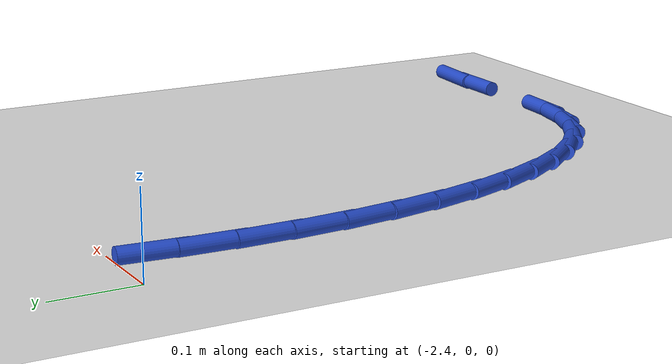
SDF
<sdf version="1.6">
 <world name="default">
  <model name="ground_plane">
   <static>1</static>
   <link name="link">
    <collision name="collision">
     <geometry><plane><normal>0 0 1</normal><size>100 100</size></plane></geometry>
     <surface><friction><ode><mu>100</mu><mu2>50</mu2></ode></friction></surface>
    </collision>
    <visual name="visual">
     <cast_shadows>0</cast_shadows>
     <geometry><plane><normal>0 0 1</normal><size>100 100</size></plane></geometry>
     <material>
      <script><uri>file://media/materials/scripts/gazebo.material</uri><name>Gazebo/WhiteGlow</name></script>
     </material>
    </visual>
   </link>
  </model>
  <model name="line">
   <link name="link_71">
    <pose>-2.3348391494016765 -0.03724082572631464 0.01 0 1.57 1.4874031911205035</pose>
    <collision name="collision">
     <geometry><cylinder><radius>0.01</radius><length>0.08</length></cylinder></geometry>
    </collision>
    <visual name="visual">
     <material>
      <script><name>Gazebo/Blue</name><uri>file://media/materials/scripts/gazebo.material</uri></script>
     </material>
     <geometry><cylinder><radius>0.01</radius><length>0.08</length></cylinder></geometry>
    </visual>
   </link>
   <link name="link_72">
    <pose>-2.340243284650177 -0.10189365188185462 0.01 0 1.57 1.535743510435168</pose>
    <collision name="collision">
     <geometry><cylinder><radius>0.01</radius><length>0.08</length></cylinder></geometry>
    </collision>
    <visual name="visual">
     <material>
      <script><name>Gazebo/Blue</name><uri>file://media/materials/scripts/gazebo.material</uri></script>
     </material>
     <geometry><cylinder><radius>0.01</radius><length>0.08</length></cylinder></geometry>
    </visual>
   </link>
   <link name="link_73">
    <pose>-2.34252378236371 -0.1669259048633213 0.01 0 1.57 -1.5556360762232304</pose>
    <collision name="collision">
     <geometry><cylinder><radius>0.01</radius><length>0.08</length></cylinder></geometry>
    </collision>
    <visual name="visual">
     <material>
      <script><name>Gazebo/Blue</name><uri>file://media/materials/scripts/gazebo.material</uri></script>
     </material>
     <geometry><cylinder><radius>0.01</radius><length>0.08</length></cylinder></geometry>
    </visual>
   </link>
   <link name="link_74">
    <pose>-2.3415421857047636 -0.23166899416703696 0.01 0 1.57 -1.5022026148852892</pose>
    <collision name="collision">
     <geometry><cylinder><radius>0.01</radius><length>0.08</length></cylinder></geometry>
    </collision>
    <visual name="visual">
     <material>
      <script><name>Gazebo/Blue</name><uri>file://media/materials/scripts/gazebo.material</uri></script>
     </material>
     <geometry><cylinder><radius>0.01</radius><length>0.08</length></cylinder></geometry>
    </visual>
   </link>
   <link name="link_75">
    <pose>-2.337160037835823 -0.2954543292893275 0.01 0 1.57 -1.4440457044604655</pose>
    <collision name="collision">
     <geometry><cylinder><radius>0.01</radius><length>0.08</length></cylinder></geometry>
    </collision>
    <visual name="visual">
     <material>
      <script><name>Gazebo/Blue</name><uri>file://media/materials/scripts/gazebo.material</uri></script>
     </material>
     <geometry><cylinder><radius>0.01</radius><length>0.08</length></cylinder></geometry>
    </visual>
   </link>
   <link name="link_76">
    <pose>-2.329238881919372 -0.35761331972651705 0.01 0 1.57 -1.3794181839525472</pose>
    <collision name="collision">
     <geometry><cylinder><radius>0.01</radius><length>0.08</length></cylinder></geometry>
    </collision>
    <visual name="visual">
     <material>
      <script><name>Gazebo/Blue</name><uri>file://media/materials/scripts/gazebo.material</uri></script>
     </material>
     <geometry><cylinder><radius>0.01</radius><length>0.08</length></cylinder></geometry>
    </visual>
   </link>
   <link name="link_77">
    <pose>-2.3176402611178966 -0.41747737497493054 0.01 0 1.57 -1.3062427389034317</pose>
    <collision name="collision">
     <geometry><cylinder><radius>0.01</radius><length>0.08</length></cylinder></geometry>
    </collision>
    <visual name="visual">
     <material>
      <script><name>Gazebo/Blue</name><uri>file://media/materials/scripts/gazebo.material</uri></script>
     </material>
     <geometry><cylinder><radius>0.01</radius><length>0.08</length></cylinder></geometry>
    </visual>
   </link>
   <link name="link_78">
    <pose>-2.302225718593882 -0.4743779045308931 0.01 0 1.57 -1.2220487191321432</pose>
    <collision name="collision">
     <geometry><cylinder><radius>0.01</radius><length>0.08</length></cylinder></geometry>
    </collision>
    <visual name="visual">
     <material>
      <script><name>Gazebo/Blue</name><uri>file://media/materials/scripts/gazebo.material</uri></script>
     </material>
     <geometry><cylinder><radius>0.01</radius><length>0.08</length></cylinder></geometry>
    </visual>
   </link>
   <link name="link_79">
    <pose>-2.2828567975098144 -0.5276463178907277 0.01 0 1.57 -1.1239860174097493</pose>
    <collision name="collision">
     <geometry><cylinder><radius>0.01</radius><length>0.08</length></cylinder></geometry>
    </collision>
    <visual name="visual">
     <material>
      <script><name>Gazebo/Blue</name><uri>file://media/materials/scripts/gazebo.material</uri></script>
     </material>
     <geometry><cylinder><radius>0.01</radius><length>0.08</length></cylinder></geometry>
    </visual>
   </link>
   <link name="link_80">
    <pose>-2.2593950410281782 -0.5766140245507598 0.01 0 1.57 -1.0090318992206129</pose>
    <collision name="collision">
     <geometry><cylinder><radius>0.01</radius><length>0.08</length></cylinder></geometry>
    </collision>
    <visual name="visual">
     <material>
      <script><name>Gazebo/Blue</name><uri>file://media/materials/scripts/gazebo.material</uri></script>
     </material>
     <geometry><cylinder><radius>0.01</radius><length>0.08</length></cylinder></geometry>
    </visual>
   </link>
   <link name="link_81">
    <pose>-2.2317019923114594 -0.6206124340073138 0.01 0 1.57 -0.8745875993310744</pose>
    <collision name="collision">
     <geometry><cylinder><radius>0.01</radius><length>0.08</length></cylinder></geometry>
    </collision>
    <visual name="visual">
     <material>
      <script><name>Gazebo/Blue</name><uri>file://media/materials/scripts/gazebo.material</uri></script>
     </material>
     <geometry><cylinder><radius>0.01</radius><length>0.08</length></cylinder></geometry>
    </visual>
   </link>
   <link name="link_82">
    <pose>-2.199639194522142 -0.6589729557567148 0.01 0 1.57 -0.7196721031065054</pose>
    <collision name="collision">
     <geometry><cylinder><radius>0.01</radius><length>0.08</length></cylinder></geometry>
    </collision>
    <visual name="visual">
     <material>
      <script><name>Gazebo/Blue</name><uri>file://media/materials/scripts/gazebo.material</uri></script>
     </material>
     <geometry><cylinder><radius>0.01</radius><length>0.08</length></cylinder></geometry>
    </visual>
   </link>
   <link name="link_83">
    <pose>-2.1630681908227127 -0.6910269992952861 0.01 0 1.57 -0.546611096932532</pose>
    <collision name="collision">
     <geometry><cylinder><radius>0.01</radius><length>0.08</length></cylinder></geometry>
    </collision>
    <visual name="visual">
     <material>
      <script><name>Gazebo/Blue</name><uri>file://media/materials/scripts/gazebo.material</uri></script>
     </material>
     <geometry><cylinder><radius>0.01</radius><length>0.08</length></cylinder></geometry>
    </visual>
   </link>
   <link name="link_84">
    <pose>-2.1218505243756574 -0.7161059741193533 0.01 0 1.57 -0.36227783582190964</pose>
    <collision name="collision">
     <geometry><cylinder><radius>0.01</radius><length>0.08</length></cylinder></geometry>
    </collision>
    <visual name="visual">
     <material>
      <script><name>Gazebo/Blue</name><uri>file://media/materials/scripts/gazebo.material</uri></script>
     </material>
     <geometry><cylinder><radius>0.01</radius><length>0.08</length></cylinder></geometry>
    </visual>
   </link>
   <link name="link_85">
    <pose>-2.0758477383434593 -0.7335412897252404 0.01 0 1.57 -0.18566326404982963</pose>
    <collision name="collision">
     <geometry><cylinder><radius>0.01</radius><length>0.08</length></cylinder></geometry>
    </collision>
    <visual name="visual">
     <material>
      <script><name>Gazebo/Blue</name><uri>file://media/materials/scripts/gazebo.material</uri></script>
     </material>
     <geometry><cylinder><radius>0.01</radius><length>0.08</length></cylinder></geometry>
    </visual>
   </link>
   <link name="link_86">
    <pose>-2.0251229717972463 -0.7430687409611028 0.01 0 1.57 -0.06281589172463498</pose>
    <collision name="collision">
     <geometry><cylinder><radius>0.01</radius><length>0.08</length></cylinder></geometry>
    </collision>
    <visual name="visual">
     <material>
      <script><name>Gazebo/Blue</name><uri>file://media/materials/scripts/gazebo.material</uri></script>
     </material>
     <geometry><cylinder><radius>0.01</radius><length>0.08</length></cylinder></geometry>
    </visual>
   </link>
   <link name="link_89">
    <pose>-1.8568442873861757 -0.74482272607892 0.01 0 1.57 0.0030263342866266385</pose>
    <collision name="collision">
     <geometry><cylinder><radius>0.01</radius><length>0.08</length></cylinder></geometry>
    </collision>
    <visual name="visual">
     <material>
      <script><name>Gazebo/Blue</name><uri>file://media/materials/scripts/gazebo.material</uri></script>
     </material>
     <geometry><cylinder><radius>0.01</radius><length>0.08</length></cylinder></geometry>
    </visual>
   </link>
   <link name="link_90">
    <pose>-1.8001139102099122 -0.7446510404692389 0.01 0 1.57 -0.06470941897085686</pose>
    <collision name="collision">
     <geometry><cylinder><radius>0.01</radius><length>0.08</length></cylinder></geometry>
    </collision>
    <visual name="visual">
     <material>
      <script><name>Gazebo/Blue</name><uri>file://media/materials/scripts/gazebo.material</uri></script>
     </material>
     <geometry><cylinder><radius>0.01</radius><length>0.08</length></cylinder></geometry>
    </visual>
   </link>
  </model>
 </world>
</sdf>
